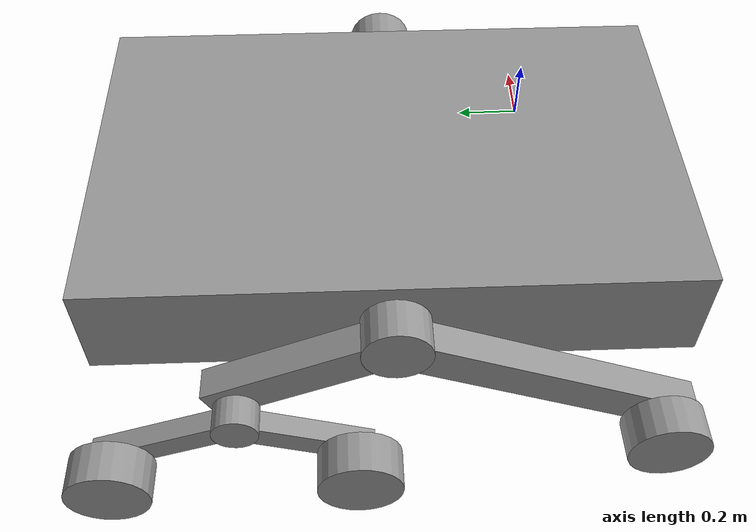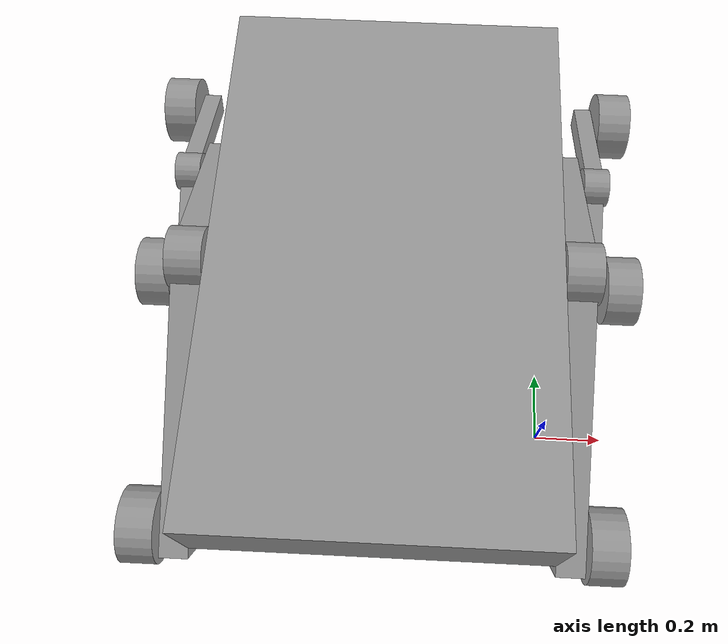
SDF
<sdf version="1.6">
 <model name="rover_2018">
  <link name="main_chassis">
   <pose>-0.495954 0.481744 0.172621 0 -0 0</pose>
   <inertial>
    <mass>10</mass>
    <inertia><ixx>0.01</ixx><ixy>0</ixy><ixz>0</ixz><iyy>0.01</iyy><iyz>0</iyz><izz>0.01</izz></inertia>
   </inertial>
   <visual name="visual">
    <geometry><box><size>1.09569 1.7415 0.312322</size></box></geometry>
    <material>
     <lighting>1</lighting>
     <script><uri>file://media/materials/scripts/gazebo.material</uri><name>Gazebo/Grey</name></script>
     <ambient>0.3 0.3 0.3 1</ambient>
     <diffuse>0.7 0.7 0.7 1</diffuse>
     <specular>0.01 0.01 0.01 1</specular>
     <emissive>0 0 0 1</emissive>
     <shader type="vertex"><normal_map>__default__</normal_map></shader>
    </material>
   </visual>
   <collision name="collision">
    <geometry><box><size>1.09569 1.7415 0.312322</size></box></geometry>
    <surface>
     <friction>
      <ode><mu>1</mu><mu2>1</mu2><fdir1>0 0 0</fdir1><slip1>0</slip1><slip2>0</slip2></ode>
      <torsional>
       <coefficient>1</coefficient>
       <patch_radius>0</patch_radius>
       <surface_radius>0</surface_radius>
       <use_patch_radius>1</use_patch_radius>
       <ode><slip>0</slip></ode>
      </torsional>
     </friction>
     <bounce><restitution_coefficient>0</restitution_coefficient><threshold>1e+06</threshold></bounce>
     <contact>
      <collide_without_contact>0</collide_without_contact>
      <collide_without_contact_bitmask>1</collide_without_contact_bitmask>
      <collide_bitmask>1</collide_bitmask>
      <ode>
       <soft_cfm>0</soft_cfm>
       <soft_erp>0.2</soft_erp>
       <kp>1e+13</kp>
       <kd>1</kd>
       <max_vel>0.01</max_vel>
       <min_depth>0</min_depth>
      </ode>
      <bullet>
       <split_impulse>1</split_impulse>
       <split_impulse_penetration_threshold>-0.01</split_impulse_penetration_threshold>
       <soft_cfm>0</soft_cfm>
       <soft_erp>0.2</soft_erp>
       <kp>1e+13</kp>
       <kd>1</kd>
      </bullet>
     </contact>
    </surface>
   </collision>
  </link>
  <link name="L_primary_rocker">
   <pose>0.120732 0.480291 0.210888 3.14159 -1.57 -3.14159</pose>
   <inertial>
    <mass>0.0046174</mass>
    <inertia><ixx>0.01</ixx><ixy>0</ixy><ixz>0</ixz><iyy>0.01</iyy><iyz>0</iyz><izz>0.01</izz></inertia>
   </inertial>
   <visual name="visual">
    <geometry><cylinder><radius>0.0992866</radius><length>0.116478</length></cylinder></geometry>
    <material>
     <lighting>1</lighting>
     <script><uri>file://media/materials/scripts/gazebo.material</uri><name>Gazebo/Grey</name></script>
     <ambient>0.3 0.3 0.3 1</ambient>
     <diffuse>0.7 0.7 0.7 1</diffuse>
     <specular>0.01 0.01 0.01 1</specular>
     <emissive>0 0 0 1</emissive>
     <shader type="vertex"><normal_map>__default__</normal_map></shader>
    </material>
   </visual>
  </link>
  <link name="L_primary_rocker_hinge">
   <pose>0.045335 0.475634 0.210685 3.14159 -1.57 -3.14159</pose>
   <inertial>
    <mass>0.00110726</mass>
    <inertia><ixx>0.01</ixx><ixy>0</ixy><ixz>0</ixz><iyy>0.01</iyy><iyz>0</iyz><izz>0.01</izz></inertia>
   </inertial>
   <visual name="visual">
    <geometry><cylinder><radius>0.0379471</radius><length>0.191181</length></cylinder></geometry>
    <material>
     <lighting>1</lighting>
     <script><uri>file://media/materials/scripts/gazebo.material</uri><name>Gazebo/Grey</name></script>
     <ambient>0.3 0.3 0.3 1</ambient>
     <diffuse>0.7 0.7 0.7 1</diffuse>
     <specular>0.01 0.01 0.01 1</specular>
     <emissive>0 0 0 1</emissive>
     <shader type="vertex"><normal_map>__default__</normal_map></shader>
    </material>
   </visual>
  </link>
  <link name="L_primary_wheel_arm_backwards">
   <pose>0.120732 0.773902 0.074463 -0.422885 0 0</pose>
   <inertial>
    <mass>0.00541225</mass>
    <inertia><ixx>0.01</ixx><ixy>0</ixy><ixz>0</ixz><iyy>0.01</iyy><iyz>0</iyz><izz>0.01</izz></inertia>
   </inertial>
   <visual name="visual">
    <geometry><box><size>0.093481 0.512407 0.11302</size></box></geometry>
    <material>
     <lighting>1</lighting>
     <script><uri>file://media/materials/scripts/gazebo.material</uri><name>Gazebo/Grey</name></script>
     <ambient>0.3 0.3 0.3 1</ambient>
     <diffuse>0.7 0.7 0.7 1</diffuse>
     <specular>0.01 0.01 0.01 1</specular>
     <emissive>0 0 0 1</emissive>
     <shader type="pixel"><normal_map>__default__</normal_map></shader>
    </material>
   </visual>
   <collision name="collision">
    <geometry><box><size>0.093481 0.512407 0.11302</size></box></geometry>
    <surface>
     <friction>
      <ode><mu>1</mu><mu2>1</mu2><fdir1>0 0 0</fdir1><slip1>0</slip1><slip2>0</slip2></ode>
      <torsional>
       <coefficient>1</coefficient>
       <patch_radius>0</patch_radius>
       <surface_radius>0</surface_radius>
       <use_patch_radius>1</use_patch_radius>
       <ode><slip>0</slip></ode>
      </torsional>
     </friction>
     <bounce><restitution_coefficient>0</restitution_coefficient><threshold>1e+06</threshold></bounce>
     <contact>
      <collide_without_contact>0</collide_without_contact>
      <collide_without_contact_bitmask>1</collide_without_contact_bitmask>
      <collide_bitmask>1</collide_bitmask>
      <ode>
       <soft_cfm>0</soft_cfm>
       <soft_erp>0.2</soft_erp>
       <kp>1e+13</kp>
       <kd>1</kd>
       <max_vel>0.01</max_vel>
       <min_depth>0</min_depth>
      </ode>
      <bullet>
       <split_impulse>1</split_impulse>
       <split_impulse_penetration_threshold>-0.01</split_impulse_penetration_threshold>
       <soft_cfm>0</soft_cfm>
       <soft_erp>0.2</soft_erp>
       <kp>1e+13</kp>
       <kd>1</kd>
      </bullet>
     </contact>
    </surface>
   </collision>
  </link>
  <link name="L_primary_wheel_arm_forwards">
   <pose>0.120732 0.030921 0.003788 0.410827 -0 0</pose>
   <inertial>
    <mass>0.00955178</mass>
    <inertia><ixx>0.01</ixx><ixy>0</ixy><ixz>0</ixz><iyy>0.01</iyy><iyz>0</iyz><izz>0.01</izz></inertia>
   </inertial>
   <visual name="visual">
    <geometry><box><size>0.093481 0.904318 0.11302</size></box></geometry>
    <material>
     <lighting>1</lighting>
     <script><uri>file://media/materials/scripts/gazebo.material</uri><name>Gazebo/Grey</name></script>
     <ambient>0.3 0.3 0.3 1</ambient>
     <diffuse>0.7 0.7 0.7 1</diffuse>
     <specular>0.01 0.01 0.01 1</specular>
     <emissive>0 0 0 1</emissive>
     <shader type="vertex"><normal_map>__default__</normal_map></shader>
    </material>
   </visual>
   <collision name="collision">
    <geometry><box><size>0.093481 0.904318 0.11302</size></box></geometry>
    <surface>
     <friction>
      <ode><mu>1</mu><mu2>1</mu2><fdir1>0 0 0</fdir1><slip1>0</slip1><slip2>0</slip2></ode>
      <torsional>
       <coefficient>1</coefficient>
       <patch_radius>0</patch_radius>
       <surface_radius>0</surface_radius>
       <use_patch_radius>1</use_patch_radius>
       <ode><slip>0</slip></ode>
      </torsional>
     </friction>
     <bounce><restitution_coefficient>0</restitution_coefficient><threshold>1e+06</threshold></bounce>
     <contact>
      <collide_without_contact>0</collide_without_contact>
      <collide_without_contact_bitmask>1</collide_without_contact_bitmask>
      <collide_bitmask>1</collide_bitmask>
      <ode>
       <soft_cfm>0</soft_cfm>
       <soft_erp>0.2</soft_erp>
       <kp>1e+13</kp>
       <kd>1</kd>
       <max_vel>0.01</max_vel>
       <min_depth>0</min_depth>
      </ode>
      <bullet>
       <split_impulse>1</split_impulse>
       <split_impulse_penetration_threshold>-0.01</split_impulse_penetration_threshold>
       <soft_cfm>0</soft_cfm>
       <soft_erp>0.2</soft_erp>
       <kp>1e+13</kp>
       <kd>1</kd>
      </bullet>
     </contact>
    </surface>
   </collision>
  </link>
  <link name="L_secondary_rocker">
   <pose>0.227534 0.930061 -0.012476 3.14159 -1.57 -3.14159</pose>
   <inertial>
    <mass>0.00158531</mass>
    <inertia><ixx>0.01</ixx><ixy>0</ixy><ixz>0</ixz><iyy>0.01</iyy><iyz>0</iyz><izz>0.01</izz></inertia>
   </inertial>
   <visual name="visual">
    <geometry><cylinder><radius>0.0665773</radius><length>0.088915</length></cylinder></geometry>
    <material>
     <lighting>1</lighting>
     <script><uri>file://media/materials/scripts/gazebo.material</uri><name>Gazebo/Grey</name></script>
     <ambient>0.3 0.3 0.3 1</ambient>
     <diffuse>0.7 0.7 0.7 1</diffuse>
     <specular>0.01 0.01 0.01 1</specular>
     <emissive>0 0 0 1</emissive>
     <shader type="vertex"><normal_map>__default__</normal_map></shader>
    </material>
   </visual>
  </link>
  <link name="L_secondary_rocker_hinge">
   <pose>0.173471 0.937461 -0.010085 3.14159 -1.57 -3.14159</pose>
   <inertial>
    <mass>0.00016166</mass>
    <inertia><ixx>0.01</ixx><ixy>0</ixy><ixz>0</ixz><iyy>0.01</iyy><iyz>0</iyz><izz>0.01</izz></inertia>
   </inertial>
   <visual name="visual">
    <geometry><cylinder><radius>0.0152481</radius><length>0.138038</length></cylinder></geometry>
    <material>
     <lighting>1</lighting>
     <script><uri>file://media/materials/scripts/gazebo.material</uri><name>Gazebo/Grey</name></script>
     <ambient>0.3 0.3 0.3 1</ambient>
     <diffuse>0.7 0.7 0.7 1</diffuse>
     <specular>0.01 0.01 0.01 1</specular>
     <emissive>0 0 0 1</emissive>
     <shader type="vertex"><normal_map>__default__</normal_map></shader>
    </material>
   </visual>
  </link>
  <link name="L_secondary_wheel_arm_backwards">
   <pose>0.227534 1.14505 -0.096467 -0.359364 0 0</pose>
   <inertial>
    <mass>0.0019482</mass>
    <inertia><ixx>0.01</ixx><ixy>0</ixy><ixz>0</ixz><iyy>0.01</iyy><iyz>0</iyz><izz>0.01</izz></inertia>
   </inertial>
   <visual name="visual">
    <geometry><box><size>0.062968 0.419703 0.073703</size></box></geometry>
    <material>
     <lighting>1</lighting>
     <script><uri>file://media/materials/scripts/gazebo.material</uri><name>Gazebo/Grey</name></script>
     <ambient>0.3 0.3 0.3 1</ambient>
     <diffuse>0.7 0.7 0.7 1</diffuse>
     <specular>0.01 0.01 0.01 1</specular>
     <emissive>0 0 0 1</emissive>
     <shader type="pixel"/>
    </material>
   </visual>
   <collision name="collision">
    <geometry><box><size>0.062968 0.419703 0.073703</size></box></geometry>
    <surface>
     <friction>
      <ode><mu>1</mu><mu2>1</mu2><fdir1>0 0 0</fdir1><slip1>0</slip1><slip2>0</slip2></ode>
      <torsional>
       <coefficient>1</coefficient>
       <patch_radius>0</patch_radius>
       <surface_radius>0</surface_radius>
       <use_patch_radius>1</use_patch_radius>
       <ode><slip>0</slip></ode>
      </torsional>
     </friction>
     <bounce><restitution_coefficient>0</restitution_coefficient><threshold>1e+06</threshold></bounce>
     <contact>
      <collide_without_contact>0</collide_without_contact>
      <collide_without_contact_bitmask>1</collide_without_contact_bitmask>
      <collide_bitmask>1</collide_bitmask>
      <ode>
       <soft_cfm>0</soft_cfm>
       <soft_erp>0.2</soft_erp>
       <kp>1e+13</kp>
       <kd>1</kd>
       <max_vel>0.01</max_vel>
       <min_depth>0</min_depth>
      </ode>
      <bullet>
       <split_impulse>1</split_impulse>
       <split_impulse_penetration_threshold>-0.01</split_impulse_penetration_threshold>
       <soft_cfm>0</soft_cfm>
       <soft_erp>0.2</soft_erp>
       <kp>1e+13</kp>
       <kd>1</kd>
      </bullet>
     </contact>
    </surface>
   </collision>
  </link>
  <link name="L_secondary_wheel_arm_forward">
   <pose>0.227534 0.747337 -0.096816 0.366679 -0 0</pose>
   <inertial>
    <mass>0.00190054</mass>
    <inertia><ixx>0.01</ixx><ixy>0</ixy><ixz>0</ixz><iyy>0.01</iyy><iyz>0</iyz><izz>0.01</izz></inertia>
   </inertial>
   <visual name="visual">
    <geometry><box><size>0.062968 0.40946 0.073703</size></box></geometry>
    <material>
     <lighting>1</lighting>
     <script><uri>file://media/materials/scripts/gazebo.material</uri><name>Gazebo/Grey</name></script>
     <ambient>0.3 0.3 0.3 1</ambient>
     <diffuse>0.7 0.7 0.7 1</diffuse>
     <specular>0.01 0.01 0.01 1</specular>
     <emissive>0 0 0 1</emissive>
     <shader type="pixel"><normal_map>__default__</normal_map></shader>
    </material>
   </visual>
   <collision name="collision">
    <geometry><box><size>0.062968 0.40946 0.073703</size></box></geometry>
    <surface>
     <friction>
      <ode><mu>1</mu><mu2>1</mu2><fdir1>0 0 0</fdir1><slip1>0</slip1><slip2>0</slip2></ode>
      <torsional>
       <coefficient>1</coefficient>
       <patch_radius>0</patch_radius>
       <surface_radius>0</surface_radius>
       <use_patch_radius>1</use_patch_radius>
       <ode><slip>0</slip></ode>
      </torsional>
     </friction>
     <bounce><restitution_coefficient>0</restitution_coefficient><threshold>1e+06</threshold></bounce>
     <contact>
      <collide_without_contact>0</collide_without_contact>
      <collide_without_contact_bitmask>1</collide_without_contact_bitmask>
      <collide_bitmask>1</collide_bitmask>
      <ode>
       <soft_cfm>0</soft_cfm>
       <soft_erp>0.2</soft_erp>
       <kp>1e+13</kp>
       <kd>1</kd>
       <max_vel>0.01</max_vel>
       <min_depth>0</min_depth>
      </ode>
      <bullet>
       <split_impulse>1</split_impulse>
       <split_impulse_penetration_threshold>-0.01</split_impulse_penetration_threshold>
       <soft_cfm>0</soft_cfm>
       <soft_erp>0.2</soft_erp>
       <kp>1e+13</kp>
       <kd>1</kd>
      </bullet>
     </contact>
    </surface>
   </collision>
  </link>
  <link name="L_wheel_1">
   <pose>0.231981 -0.300898 -0.152796 3.14159 -1.57 -3.14159</pose>
   <inertial>
    <mass>1</mass>
    <inertia><ixx>0.01</ixx><ixy>0</ixy><ixz>0</ixz><iyy>0.01</iyy><iyz>0</iyz><izz>0.01</izz></inertia>
   </inertial>
   <visual name="visual">
    <geometry><cylinder><radius>0.122078</radius><length>0.116478</length></cylinder></geometry>
    <material>
     <lighting>1</lighting>
     <script><uri>file://media/materials/scripts/gazebo.material</uri><name>Gazebo/Grey</name></script>
     <ambient>0.3 0.3 0.3 1</ambient>
     <diffuse>0.7 0.7 0.7 1</diffuse>
     <specular>0.01 0.01 0.01 1</specular>
     <emissive>0 0 0 1</emissive>
     <shader type="vertex"><normal_map>__default__</normal_map></shader>
    </material>
   </visual>
   <collision name="collision">
    <geometry><cylinder><radius>0.122078</radius><length>0.116478</length></cylinder></geometry>
    <surface>
     <friction>
      <ode><mu>1</mu><mu2>1</mu2><fdir1>0 0 0</fdir1><slip1>0</slip1><slip2>0</slip2></ode>
      <torsional>
       <coefficient>1</coefficient>
       <patch_radius>0</patch_radius>
       <surface_radius>0</surface_radius>
       <use_patch_radius>1</use_patch_radius>
       <ode><slip>0</slip></ode>
      </torsional>
     </friction>
     <bounce><restitution_coefficient>0</restitution_coefficient><threshold>1e+06</threshold></bounce>
     <contact>
      <collide_without_contact>0</collide_without_contact>
      <collide_without_contact_bitmask>1</collide_without_contact_bitmask>
      <collide_bitmask>1</collide_bitmask>
      <ode>
       <soft_cfm>0</soft_cfm>
       <soft_erp>0.2</soft_erp>
       <kp>1e+13</kp>
       <kd>1</kd>
       <max_vel>0.01</max_vel>
       <min_depth>0</min_depth>
      </ode>
      <bullet>
       <split_impulse>1</split_impulse>
       <split_impulse_penetration_threshold>-0.01</split_impulse_penetration_threshold>
       <soft_cfm>0</soft_cfm>
       <soft_erp>0.2</soft_erp>
       <kp>1e+13</kp>
       <kd>1</kd>
      </bullet>
     </contact>
    </surface>
   </collision>
  </link>
  <link name="L_wheel_2">
   <pose>0.327595 0.588491 -0.15151 3.14159 -1.57 -3.14159</pose>
   <inertial>
    <mass>1</mass>
    <inertia><ixx>0.01</ixx><ixy>0</ixy><ixz>0</ixz><iyy>0.01</iyy><iyz>0</iyz><izz>0.01</izz></inertia>
   </inertial>
   <visual name="visual">
    <geometry><cylinder><radius>0.122078</radius><length>0.116478</length></cylinder></geometry>
    <material>
     <lighting>1</lighting>
     <script><uri>file://media/materials/scripts/gazebo.material</uri><name>Gazebo/Grey</name></script>
     <ambient>0.3 0.3 0.3 1</ambient>
     <diffuse>0.7 0.7 0.7 1</diffuse>
     <specular>0.01 0.01 0.01 1</specular>
     <emissive>0 0 0 1</emissive>
     <shader type="vertex"><normal_map>__default__</normal_map></shader>
    </material>
   </visual>
   <collision name="collision">
    <geometry><cylinder><radius>0.122078</radius><length>0.116478</length></cylinder></geometry>
    <surface>
     <friction>
      <ode><mu>1</mu><mu2>1</mu2><fdir1>0 0 0</fdir1><slip1>0</slip1><slip2>0</slip2></ode>
      <torsional>
       <coefficient>1</coefficient>
       <patch_radius>0</patch_radius>
       <surface_radius>0</surface_radius>
       <use_patch_radius>1</use_patch_radius>
       <ode><slip>0</slip></ode>
      </torsional>
     </friction>
     <bounce><restitution_coefficient>0</restitution_coefficient><threshold>1e+06</threshold></bounce>
     <contact>
      <collide_without_contact>0</collide_without_contact>
      <collide_without_contact_bitmask>1</collide_without_contact_bitmask>
      <collide_bitmask>1</collide_bitmask>
      <ode>
       <soft_cfm>0</soft_cfm>
       <soft_erp>0.2</soft_erp>
       <kp>1e+13</kp>
       <kd>1</kd>
       <max_vel>0.01</max_vel>
       <min_depth>0</min_depth>
      </ode>
      <bullet>
       <split_impulse>1</split_impulse>
       <split_impulse_penetration_threshold>-0.01</split_impulse_penetration_threshold>
       <soft_cfm>0</soft_cfm>
       <soft_erp>0.2</soft_erp>
       <kp>1e+13</kp>
       <kd>1</kd>
      </bullet>
     </contact>
    </surface>
   </collision>
  </link>
  <link name="L_wheel_3">
   <pose>0.327595 1.29129 -0.152082 3.14159 -1.57 -3.14159</pose>
   <inertial>
    <mass>1</mass>
    <inertia><ixx>0.01</ixx><ixy>0</ixy><ixz>0</ixz><iyy>0.01</iyy><iyz>0</iyz><izz>0.01</izz></inertia>
   </inertial>
   <visual name="visual">
    <geometry><cylinder><radius>0.122078</radius><length>0.116478</length></cylinder></geometry>
    <material>
     <lighting>1</lighting>
     <script><uri>file://media/materials/scripts/gazebo.material</uri><name>Gazebo/Grey</name></script>
     <ambient>0.3 0.3 0.3 1</ambient>
     <diffuse>0.7 0.7 0.7 1</diffuse>
     <specular>0.01 0.01 0.01 1</specular>
     <emissive>0 0 0 1</emissive>
     <shader type="vertex"><normal_map>__default__</normal_map></shader>
    </material>
   </visual>
   <collision name="collision">
    <geometry><cylinder><radius>0.122078</radius><length>0.116478</length></cylinder></geometry>
    <surface>
     <friction>
      <ode><mu>1</mu><mu2>1</mu2><fdir1>0 0 0</fdir1><slip1>0</slip1><slip2>0</slip2></ode>
      <torsional>
       <coefficient>1</coefficient>
       <patch_radius>0</patch_radius>
       <surface_radius>0</surface_radius>
       <use_patch_radius>1</use_patch_radius>
       <ode><slip>0</slip></ode>
      </torsional>
     </friction>
     <bounce><restitution_coefficient>0</restitution_coefficient><threshold>1e+06</threshold></bounce>
     <contact>
      <collide_without_contact>0</collide_without_contact>
      <collide_without_contact_bitmask>1</collide_without_contact_bitmask>
      <collide_bitmask>1</collide_bitmask>
      <ode>
       <soft_cfm>0</soft_cfm>
       <soft_erp>0.2</soft_erp>
       <kp>1e+13</kp>
       <kd>1</kd>
       <max_vel>0.01</max_vel>
       <min_depth>0</min_depth>
      </ode>
      <bullet>
       <split_impulse>1</split_impulse>
       <split_impulse_penetration_threshold>-0.01</split_impulse_penetration_threshold>
       <soft_cfm>0</soft_cfm>
       <soft_erp>0.2</soft_erp>
       <kp>1e+13</kp>
       <kd>1</kd>
      </bullet>
     </contact>
    </surface>
   </collision>
  </link>
  <link name="L_wheel_hinge_1">
   <pose>0.157404 -0.319861 -0.15619 3.14159 -1.57 -3.14159</pose>
   <inertial>
    <mass>0.00016166</mass>
    <inertia><ixx>0.01</ixx><ixy>0</ixy><ixz>0</ixz><iyy>0.01</iyy><iyz>0</iyz><izz>0.01</izz></inertia>
   </inertial>
   <visual name="visual">
    <geometry><cylinder><radius>0.0170673</radius><length>0.138038</length></cylinder></geometry>
    <material>
     <lighting>1</lighting>
     <script><uri>file://media/materials/scripts/gazebo.material</uri><name>Gazebo/Grey</name></script>
     <ambient>0.3 0.3 0.3 1</ambient>
     <diffuse>0.7 0.7 0.7 1</diffuse>
     <specular>0.01 0.01 0.01 1</specular>
     <emissive>0 0 0 1</emissive>
     <shader type="vertex"><normal_map>__default__</normal_map></shader>
    </material>
   </visual>
  </link>
  <link name="L_wheel_hinge_2">
   <pose>0.266627 0.591116 -0.159992 3.14159 -1.57 -3.14159</pose>
   <inertial>
    <mass>0.00016166</mass>
    <inertia><ixx>0.01</ixx><ixy>0</ixy><ixz>0</ixz><iyy>0.01</iyy><iyz>0</iyz><izz>0.01</izz></inertia>
   </inertial>
   <visual name="visual">
    <geometry><cylinder><radius>0.0170673</radius><length>0.138038</length></cylinder></geometry>
    <material>
     <lighting>1</lighting>
     <script><uri>file://media/materials/scripts/gazebo.material</uri><name>Gazebo/Grey</name></script>
     <ambient>0.3 0.3 0.3 1</ambient>
     <diffuse>0.7 0.7 0.7 1</diffuse>
     <specular>0.01 0.01 0.01 1</specular>
     <emissive>0 0 0 1</emissive>
     <shader type="vertex"><normal_map>__default__</normal_map></shader>
    </material>
   </visual>
  </link>
  <link name="L_wheel_hinge_3">
   <pose>0.283732 1.29534 -0.157563 3.14159 -1.57 -3.14159</pose>
   <inertial>
    <mass>0.0001415</mass>
    <inertia><ixx>0.01</ixx><ixy>0</ixy><ixz>0</ixz><iyy>0.01</iyy><iyz>0</iyz><izz>0.01</izz></inertia>
   </inertial>
   <visual name="visual">
    <geometry><cylinder><radius>0.0170673</radius><length>0.120823</length></cylinder></geometry>
    <material>
     <lighting>1</lighting>
     <script><uri>file://media/materials/scripts/gazebo.material</uri><name>Gazebo/Grey</name></script>
     <ambient>0.3 0.3 0.3 1</ambient>
     <diffuse>0.7 0.7 0.7 1</diffuse>
     <specular>0.01 0.01 0.01 1</specular>
     <emissive>0 0 0 1</emissive>
     <shader type="vertex"><normal_map>__default__</normal_map></shader>
    </material>
   </visual>
  </link>
  <link name="R_primary_rocker">
   <pose>-1.11994 0.480291 0.2099 3.14159 -1.57 -3.14159</pose>
   <inertial>
    <mass>0.0046174</mass>
    <inertia><ixx>0.01</ixx><ixy>0</ixy><ixz>0</ixz><iyy>0.01</iyy><iyz>0</iyz><izz>0.01</izz></inertia>
   </inertial>
   <visual name="visual">
    <geometry><cylinder><radius>0.0992866</radius><length>0.116478</length></cylinder></geometry>
    <material>
     <lighting>1</lighting>
     <script><uri>file://media/materials/scripts/gazebo.material</uri><name>Gazebo/Grey</name></script>
     <ambient>0.3 0.3 0.3 1</ambient>
     <diffuse>0.7 0.7 0.7 1</diffuse>
     <specular>0.01 0.01 0.01 1</specular>
     <emissive>0 0 0 1</emissive>
     <shader type="vertex"><normal_map>__default__</normal_map></shader>
    </material>
   </visual>
  </link>
  <link name="R_primary_rocker_hinge">
   <pose>-1.03751 0.475634 0.209823 3.14159 -1.57 -3.14159</pose>
   <inertial>
    <mass>0.00110726</mass>
    <inertia><ixx>0.01</ixx><ixy>0</ixy><ixz>0</ixz><iyy>0.01</iyy><iyz>0</iyz><izz>0.01</izz></inertia>
   </inertial>
   <visual name="visual">
    <geometry><cylinder><radius>0.0379471</radius><length>0.191181</length></cylinder></geometry>
    <material>
     <lighting>1</lighting>
     <script><uri>file://media/materials/scripts/gazebo.material</uri><name>Gazebo/Grey</name></script>
     <ambient>0.3 0.3 0.3 1</ambient>
     <diffuse>0.7 0.7 0.7 1</diffuse>
     <specular>0.01 0.01 0.01 1</specular>
     <emissive>0 0 0 1</emissive>
     <shader type="vertex"><normal_map>__default__</normal_map></shader>
    </material>
   </visual>
  </link>
  <link name="R_primary_wheel_arm_backwards">
   <pose>-1.11994 0.773902 0.074463 -0.422885 0 0</pose>
   <inertial>
    <mass>0.00541225</mass>
    <inertia><ixx>0.01</ixx><ixy>0</ixy><ixz>0</ixz><iyy>0.01</iyy><iyz>0</iyz><izz>0.01</izz></inertia>
   </inertial>
   <visual name="visual">
    <geometry><box><size>0.093481 0.512407 0.11302</size></box></geometry>
    <material>
     <lighting>1</lighting>
     <script><uri>file://media/materials/scripts/gazebo.material</uri><name>Gazebo/Grey</name></script>
     <ambient>0.3 0.3 0.3 1</ambient>
     <diffuse>0.7 0.7 0.7 1</diffuse>
     <specular>0.01 0.01 0.01 1</specular>
     <emissive>0 0 0 1</emissive>
     <shader type="pixel"/>
    </material>
   </visual>
   <collision name="collision">
    <geometry><box><size>0.093481 0.512407 0.11302</size></box></geometry>
    <surface>
     <friction>
      <ode><mu>1</mu><mu2>1</mu2><fdir1>0 0 0</fdir1><slip1>0</slip1><slip2>0</slip2></ode>
      <torsional>
       <coefficient>1</coefficient>
       <patch_radius>0</patch_radius>
       <surface_radius>0</surface_radius>
       <use_patch_radius>1</use_patch_radius>
       <ode><slip>0</slip></ode>
      </torsional>
     </friction>
     <bounce><restitution_coefficient>0</restitution_coefficient><threshold>1e+06</threshold></bounce>
     <contact>
      <collide_without_contact>0</collide_without_contact>
      <collide_without_contact_bitmask>1</collide_without_contact_bitmask>
      <collide_bitmask>1</collide_bitmask>
      <ode>
       <soft_cfm>0</soft_cfm>
       <soft_erp>0.2</soft_erp>
       <kp>1e+13</kp>
       <kd>1</kd>
       <max_vel>0.01</max_vel>
       <min_depth>0</min_depth>
      </ode>
      <bullet>
       <split_impulse>1</split_impulse>
       <split_impulse_penetration_threshold>-0.01</split_impulse_penetration_threshold>
       <soft_cfm>0</soft_cfm>
       <soft_erp>0.2</soft_erp>
       <kp>1e+13</kp>
       <kd>1</kd>
      </bullet>
     </contact>
    </surface>
   </collision>
  </link>
  <link name="R_primary_wheel_arm_forwards">
   <pose>-1.11994 0.030921 0.003788 0.410827 -0 0</pose>
   <inertial>
    <mass>0.00955178</mass>
    <inertia><ixx>0.01</ixx><ixy>0</ixy><ixz>0</ixz><iyy>0.01</iyy><iyz>0</iyz><izz>0.01</izz></inertia>
   </inertial>
   <visual name="visual">
    <geometry><box><size>0.093481 0.904318 0.11302</size></box></geometry>
    <material>
     <lighting>1</lighting>
     <script><uri>file://media/materials/scripts/gazebo.material</uri><name>Gazebo/Grey</name></script>
     <ambient>0.3 0.3 0.3 1</ambient>
     <diffuse>0.7 0.7 0.7 1</diffuse>
     <specular>0.01 0.01 0.01 1</specular>
     <emissive>0 0 0 1</emissive>
     <shader type="vertex"><normal_map>__default__</normal_map></shader>
    </material>
   </visual>
   <collision name="collision">
    <geometry><box><size>0.093481 0.904318 0.11302</size></box></geometry>
    <surface>
     <friction>
      <ode><mu>1</mu><mu2>1</mu2><fdir1>0 0 0</fdir1><slip1>0</slip1><slip2>0</slip2></ode>
      <torsional>
       <coefficient>1</coefficient>
       <patch_radius>0</patch_radius>
       <surface_radius>0</surface_radius>
       <use_patch_radius>1</use_patch_radius>
       <ode><slip>0</slip></ode>
      </torsional>
     </friction>
     <bounce><restitution_coefficient>0</restitution_coefficient><threshold>1e+06</threshold></bounce>
     <contact>
      <collide_without_contact>0</collide_without_contact>
      <collide_without_contact_bitmask>1</collide_without_contact_bitmask>
      <collide_bitmask>1</collide_bitmask>
      <ode>
       <soft_cfm>0</soft_cfm>
       <soft_erp>0.2</soft_erp>
       <kp>1e+13</kp>
       <kd>1</kd>
       <max_vel>0.01</max_vel>
       <min_depth>0</min_depth>
      </ode>
      <bullet>
       <split_impulse>1</split_impulse>
       <split_impulse_penetration_threshold>-0.01</split_impulse_penetration_threshold>
       <soft_cfm>0</soft_cfm>
       <soft_erp>0.2</soft_erp>
       <kp>1e+13</kp>
       <kd>1</kd>
      </bullet>
     </contact>
    </surface>
   </collision>
  </link>
  <link name="R_secondary_rocker">
   <pose>-1.22452 0.930061 -0.013632 3.14159 -1.57 -3.14159</pose>
   <inertial>
    <mass>0.00158531</mass>
    <inertia><ixx>0.01</ixx><ixy>0</ixy><ixz>0</ixz><iyy>0.01</iyy><iyz>0</iyz><izz>0.01</izz></inertia>
   </inertial>
   <visual name="visual">
    <geometry><cylinder><radius>0.0665773</radius><length>0.088915</length></cylinder></geometry>
    <material>
     <lighting>1</lighting>
     <script><uri>file://media/materials/scripts/gazebo.material</uri><name>Gazebo/Grey</name></script>
     <ambient>0.3 0.3 0.3 1</ambient>
     <diffuse>0.7 0.7 0.7 1</diffuse>
     <specular>0.01 0.01 0.01 1</specular>
     <emissive>0 0 0 1</emissive>
     <shader type="vertex"><normal_map>__default__</normal_map></shader>
    </material>
   </visual>
  </link>
  <link name="R_secondary_rocker_hinge">
   <pose>-1.16913 0.937461 -0.011154 3.14159 -1.57 -3.14159</pose>
   <inertial>
    <mass>0.00016166</mass>
    <inertia><ixx>0.01</ixx><ixy>0</ixy><ixz>0</ixz><iyy>0.01</iyy><iyz>0</iyz><izz>0.01</izz></inertia>
   </inertial>
   <visual name="visual">
    <geometry><cylinder><radius>0.0170673</radius><length>0.138038</length></cylinder></geometry>
    <material>
     <lighting>1</lighting>
     <script><uri>file://media/materials/scripts/gazebo.material</uri><name>Gazebo/Grey</name></script>
     <ambient>0.3 0.3 0.3 1</ambient>
     <diffuse>0.7 0.7 0.7 1</diffuse>
     <specular>0.01 0.01 0.01 1</specular>
     <emissive>0 0 0 1</emissive>
     <shader type="vertex"><normal_map>__default__</normal_map></shader>
    </material>
   </visual>
  </link>
  <link name="R_secondary_wheel_arm_backwards">
   <pose>-1.22452 1.14505 -0.096467 -0.359364 0 0</pose>
   <inertial>
    <mass>0.0019482</mass>
    <inertia><ixx>0.01</ixx><ixy>0</ixy><ixz>0</ixz><iyy>0.01</iyy><iyz>0</iyz><izz>0.01</izz></inertia>
   </inertial>
   <visual name="visual">
    <geometry><box><size>0.062968 0.419703 0.073703</size></box></geometry>
    <material>
     <lighting>1</lighting>
     <script><uri>file://media/materials/scripts/gazebo.material</uri><name>Gazebo/Grey</name></script>
     <ambient>0.3 0.3 0.3 1</ambient>
     <diffuse>0.7 0.7 0.7 1</diffuse>
     <specular>0.01 0.01 0.01 1</specular>
     <emissive>0 0 0 1</emissive>
     <shader type="pixel"><normal_map>__default__</normal_map></shader>
    </material>
   </visual>
   <collision name="collision">
    <geometry><box><size>0.062968 0.419703 0.073703</size></box></geometry>
    <surface>
     <friction>
      <ode><mu>1</mu><mu2>1</mu2><fdir1>0 0 0</fdir1><slip1>0</slip1><slip2>0</slip2></ode>
      <torsional>
       <coefficient>1</coefficient>
       <patch_radius>0</patch_radius>
       <surface_radius>0</surface_radius>
       <use_patch_radius>1</use_patch_radius>
       <ode><slip>0</slip></ode>
      </torsional>
     </friction>
     <bounce><restitution_coefficient>0</restitution_coefficient><threshold>1e+06</threshold></bounce>
     <contact>
      <collide_without_contact>0</collide_without_contact>
      <collide_without_contact_bitmask>1</collide_without_contact_bitmask>
      <collide_bitmask>1</collide_bitmask>
      <ode>
       <soft_cfm>0</soft_cfm>
       <soft_erp>0.2</soft_erp>
       <kp>1e+13</kp>
       <kd>1</kd>
       <max_vel>0.01</max_vel>
       <min_depth>0</min_depth>
      </ode>
      <bullet>
       <split_impulse>1</split_impulse>
       <split_impulse_penetration_threshold>-0.01</split_impulse_penetration_threshold>
       <soft_cfm>0</soft_cfm>
       <soft_erp>0.2</soft_erp>
       <kp>1e+13</kp>
       <kd>1</kd>
      </bullet>
     </contact>
    </surface>
   </collision>
  </link>
  <link name="R_secondary_wheel_arm_forward">
   <pose>-1.22452 0.747337 -0.096816 0.366679 -0 0</pose>
   <inertial>
    <mass>0.00190054</mass>
    <inertia><ixx>0.01</ixx><ixy>0</ixy><ixz>0</ixz><iyy>0.01</iyy><iyz>0</iyz><izz>0.01</izz></inertia>
   </inertial>
   <visual name="visual">
    <geometry><box><size>0.062968 0.40946 0.073703</size></box></geometry>
    <material>
     <lighting>1</lighting>
     <script><uri>file://media/materials/scripts/gazebo.material</uri><name>Gazebo/Grey</name></script>
     <ambient>0.3 0.3 0.3 1</ambient>
     <diffuse>0.7 0.7 0.7 1</diffuse>
     <specular>0.01 0.01 0.01 1</specular>
     <emissive>0 0 0 1</emissive>
     <shader type="pixel"><normal_map>__default__</normal_map></shader>
    </material>
   </visual>
   <collision name="collision">
    <geometry><box><size>0.062968 0.40946 0.073703</size></box></geometry>
    <surface>
     <friction>
      <ode><mu>1</mu><mu2>1</mu2><fdir1>0 0 0</fdir1><slip1>0</slip1><slip2>0</slip2></ode>
      <torsional>
       <coefficient>1</coefficient>
       <patch_radius>0</patch_radius>
       <surface_radius>0</surface_radius>
       <use_patch_radius>1</use_patch_radius>
       <ode><slip>0</slip></ode>
      </torsional>
     </friction>
     <bounce><restitution_coefficient>0</restitution_coefficient><threshold>1e+06</threshold></bounce>
     <contact>
      <collide_without_contact>0</collide_without_contact>
      <collide_without_contact_bitmask>1</collide_without_contact_bitmask>
      <collide_bitmask>1</collide_bitmask>
      <ode>
       <soft_cfm>0</soft_cfm>
       <soft_erp>0.2</soft_erp>
       <kp>1e+13</kp>
       <kd>1</kd>
       <max_vel>0.01</max_vel>
       <min_depth>0</min_depth>
      </ode>
      <bullet>
       <split_impulse>1</split_impulse>
       <split_impulse_penetration_threshold>-0.01</split_impulse_penetration_threshold>
       <soft_cfm>0</soft_cfm>
       <soft_erp>0.2</soft_erp>
       <kp>1e+13</kp>
       <kd>1</kd>
      </bullet>
     </contact>
    </surface>
   </collision>
  </link>
  <link name="R_wheel_1">
   <pose>-1.23345 -0.300898 -0.153963 3.14159 -1.57 -3.14159</pose>
   <inertial>
    <mass>1</mass>
    <inertia><ixx>0.01</ixx><ixy>0</ixy><ixz>0</ixz><iyy>0.01</iyy><iyz>0</iyz><izz>0.01</izz></inertia>
   </inertial>
   <visual name="visual">
    <geometry><cylinder><radius>0.122078</radius><length>0.116478</length></cylinder></geometry>
    <material>
     <lighting>1</lighting>
     <script><uri>file://media/materials/scripts/gazebo.material</uri><name>Gazebo/Grey</name></script>
     <ambient>0.3 0.3 0.3 1</ambient>
     <diffuse>0.7 0.7 0.7 1</diffuse>
     <specular>0.01 0.01 0.01 1</specular>
     <emissive>0 0 0 1</emissive>
     <shader type="vertex"><normal_map>__default__</normal_map></shader>
    </material>
   </visual>
   <collision name="collision">
    <geometry><cylinder><radius>0.122078</radius><length>0.116478</length></cylinder></geometry>
    <surface>
     <friction>
      <ode><mu>1</mu><mu2>1</mu2><fdir1>0 0 0</fdir1><slip1>0</slip1><slip2>0</slip2></ode>
      <torsional>
       <coefficient>1</coefficient>
       <patch_radius>0</patch_radius>
       <surface_radius>0</surface_radius>
       <use_patch_radius>1</use_patch_radius>
       <ode><slip>0</slip></ode>
      </torsional>
     </friction>
     <bounce><restitution_coefficient>0</restitution_coefficient><threshold>1e+06</threshold></bounce>
     <contact>
      <collide_without_contact>0</collide_without_contact>
      <collide_without_contact_bitmask>1</collide_without_contact_bitmask>
      <collide_bitmask>1</collide_bitmask>
      <ode>
       <soft_cfm>0</soft_cfm>
       <soft_erp>0.2</soft_erp>
       <kp>1e+13</kp>
       <kd>1</kd>
       <max_vel>0.01</max_vel>
       <min_depth>0</min_depth>
      </ode>
      <bullet>
       <split_impulse>1</split_impulse>
       <split_impulse_penetration_threshold>-0.01</split_impulse_penetration_threshold>
       <soft_cfm>0</soft_cfm>
       <soft_erp>0.2</soft_erp>
       <kp>1e+13</kp>
       <kd>1</kd>
      </bullet>
     </contact>
    </surface>
   </collision>
  </link>
  <link name="R_wheel_2">
   <pose>-1.31728 0.588299 -0.152822 3.14159 -1.57 -3.14159</pose>
   <inertial>
    <mass>1</mass>
    <inertia><ixx>0.01</ixx><ixy>0</ixy><ixz>0</ixz><iyy>0.01</iyy><iyz>0</iyz><izz>0.01</izz></inertia>
   </inertial>
   <visual name="visual">
    <geometry><cylinder><radius>0.122078</radius><length>0.116478</length></cylinder></geometry>
    <material>
     <lighting>1</lighting>
     <script><uri>file://media/materials/scripts/gazebo.material</uri><name>Gazebo/Grey</name></script>
     <ambient>0.3 0.3 0.3 1</ambient>
     <diffuse>0.7 0.7 0.7 1</diffuse>
     <specular>0.01 0.01 0.01 1</specular>
     <emissive>0 0 0 1</emissive>
     <shader type="vertex"><normal_map>__default__</normal_map></shader>
    </material>
   </visual>
   <collision name="collision">
    <geometry><cylinder><radius>0.122078</radius><length>0.116478</length></cylinder></geometry>
    <surface>
     <friction>
      <ode><mu>1</mu><mu2>1</mu2><fdir1>0 0 0</fdir1><slip1>0</slip1><slip2>0</slip2></ode>
      <torsional>
       <coefficient>1</coefficient>
       <patch_radius>0</patch_radius>
       <surface_radius>0</surface_radius>
       <use_patch_radius>1</use_patch_radius>
       <ode><slip>0</slip></ode>
      </torsional>
     </friction>
     <bounce><restitution_coefficient>0</restitution_coefficient><threshold>1e+06</threshold></bounce>
     <contact>
      <collide_without_contact>0</collide_without_contact>
      <collide_without_contact_bitmask>1</collide_without_contact_bitmask>
      <collide_bitmask>1</collide_bitmask>
      <ode>
       <soft_cfm>0</soft_cfm>
       <soft_erp>0.2</soft_erp>
       <kp>1e+13</kp>
       <kd>1</kd>
       <max_vel>0.01</max_vel>
       <min_depth>0</min_depth>
      </ode>
      <bullet>
       <split_impulse>1</split_impulse>
       <split_impulse_penetration_threshold>-0.01</split_impulse_penetration_threshold>
       <soft_cfm>0</soft_cfm>
       <soft_erp>0.2</soft_erp>
       <kp>1e+13</kp>
       <kd>1</kd>
      </bullet>
     </contact>
    </surface>
   </collision>
  </link>
  <link name="R_wheel_3">
   <pose>-1.31997 1.29129 -0.1534 3.14159 -1.57 -3.14159</pose>
   <inertial>
    <mass>1</mass>
    <inertia><ixx>0.01</ixx><ixy>0</ixy><ixz>0</ixz><iyy>0.01</iyy><iyz>0</iyz><izz>0.01</izz></inertia>
   </inertial>
   <visual name="visual">
    <geometry><cylinder><radius>0.122078</radius><length>0.116478</length></cylinder></geometry>
    <material>
     <lighting>1</lighting>
     <script><uri>file://media/materials/scripts/gazebo.material</uri><name>Gazebo/Grey</name></script>
     <ambient>0.3 0.3 0.3 1</ambient>
     <diffuse>0.7 0.7 0.7 1</diffuse>
     <specular>0.01 0.01 0.01 1</specular>
     <emissive>0 0 0 1</emissive>
     <shader type="vertex"><normal_map>__default__</normal_map></shader>
    </material>
   </visual>
   <collision name="collision">
    <geometry><cylinder><radius>0.122078</radius><length>0.116478</length></cylinder></geometry>
    <surface>
     <friction>
      <ode><mu>1</mu><mu2>1</mu2><fdir1>0 0 0</fdir1><slip1>0</slip1><slip2>0</slip2></ode>
      <torsional>
       <coefficient>1</coefficient>
       <patch_radius>0</patch_radius>
       <surface_radius>0</surface_radius>
       <use_patch_radius>1</use_patch_radius>
       <ode><slip>0</slip></ode>
      </torsional>
     </friction>
     <bounce><restitution_coefficient>0</restitution_coefficient><threshold>1e+06</threshold></bounce>
     <contact>
      <collide_without_contact>0</collide_without_contact>
      <collide_without_contact_bitmask>1</collide_without_contact_bitmask>
      <collide_bitmask>1</collide_bitmask>
      <ode>
       <soft_cfm>0</soft_cfm>
       <soft_erp>0.2</soft_erp>
       <kp>1e+13</kp>
       <kd>1</kd>
       <max_vel>0.01</max_vel>
       <min_depth>0</min_depth>
      </ode>
      <bullet>
       <split_impulse>1</split_impulse>
       <split_impulse_penetration_threshold>-0.01</split_impulse_penetration_threshold>
       <soft_cfm>0</soft_cfm>
       <soft_erp>0.2</soft_erp>
       <kp>1e+13</kp>
       <kd>1</kd>
      </bullet>
     </contact>
    </surface>
   </collision>
  </link>
  <link name="R_wheel_hinge_1">
   <pose>-1.17844 -0.319861 -0.157254 3.14159 -1.57 -3.14159</pose>
   <inertial>
    <mass>0.00016166</mass>
    <inertia><ixx>0.01</ixx><ixy>0</ixy><ixz>0</ixz><iyy>0.01</iyy><iyz>0</iyz><izz>0.01</izz></inertia>
   </inertial>
   <visual name="visual">
    <geometry><cylinder><radius>0.0170673</radius><length>0.138038</length></cylinder></geometry>
    <material>
     <lighting>1</lighting>
     <script><uri>file://media/materials/scripts/gazebo.material</uri><name>Gazebo/Grey</name></script>
     <ambient>0.3 0.3 0.3 1</ambient>
     <diffuse>0.7 0.7 0.7 1</diffuse>
     <specular>0.01 0.01 0.01 1</specular>
     <emissive>0 0 0 1</emissive>
     <shader type="vertex"><normal_map>__default__</normal_map></shader>
    </material>
   </visual>
  </link>
  <link name="R_wheel_hinge_2">
   <pose>-1.26851 0.591116 -0.161214 3.14159 -1.57 -3.14159</pose>
   <inertial>
    <mass>0.00016166</mass>
    <inertia><ixx>0.01</ixx><ixy>0</ixy><ixz>0</ixz><iyy>0.01</iyy><iyz>0</iyz><izz>0.01</izz></inertia>
   </inertial>
   <visual name="visual">
    <geometry><cylinder><radius>0.0170673</radius><length>0.138038</length></cylinder></geometry>
    <material>
     <lighting>1</lighting>
     <script><uri>file://media/materials/scripts/gazebo.material</uri><name>Gazebo/Grey</name></script>
     <ambient>0.3 0.3 0.3 1</ambient>
     <diffuse>0.7 0.7 0.7 1</diffuse>
     <specular>0.01 0.01 0.01 1</specular>
     <emissive>0 0 0 1</emissive>
     <shader type="vertex"><normal_map>__default__</normal_map></shader>
    </material>
   </visual>
  </link>
  <link name="R_wheel_hinge_3">
   <pose>-1.26643 1.29534 -0.158797 3.14159 -1.57 -3.14159</pose>
   <inertial>
    <mass>0.0001415</mass>
    <inertia><ixx>0.01</ixx><ixy>0</ixy><ixz>0</ixz><iyy>0.01</iyy><iyz>0</iyz><izz>0.01</izz></inertia>
   </inertial>
   <visual name="visual">
    <geometry><cylinder><radius>0.0170673</radius><length>0.120823</length></cylinder></geometry>
    <material>
     <lighting>1</lighting>
     <script><uri>file://media/materials/scripts/gazebo.material</uri><name>Gazebo/Grey</name></script>
     <ambient>0.3 0.3 0.3 1</ambient>
     <diffuse>0.7 0.7 0.7 1</diffuse>
     <specular>0.01 0.01 0.01 1</specular>
     <emissive>0 0 0 1</emissive>
     <shader type="vertex"><normal_map>__default__</normal_map></shader>
    </material>
   </visual>
  </link>
  <joint name="L_primary_rocker_JOINT_4" type="fixed">
   <parent>L_primary_rocker</parent>
   <child>L_primary_wheel_arm_forwards</child>
   <physics>
    <ode><limit><cfm>0</cfm><erp>0.2</erp></limit><suspension><cfm>0</cfm><erp>0.2</erp></suspension></ode>
   </physics>
  </joint>
  <joint name="L_primary_rocker_JOINT_6" type="fixed">
   <parent>L_primary_rocker</parent>
   <child>L_primary_wheel_arm_backwards</child>
   <physics>
    <ode><limit><cfm>0</cfm><erp>0.2</erp></limit><suspension><cfm>0</cfm><erp>0.2</erp></suspension></ode>
   </physics>
  </joint>
  <joint name="L_primary_rocker_hinge_JOINT_2" type="revolute">
   <parent>L_primary_rocker_hinge</parent>
   <child>L_primary_rocker</child>
   <axis>
    <xyz>0 0 1</xyz>
    <use_parent_model_frame>0</use_parent_model_frame>
    <limit>
     <lower>-1.79769e+308</lower>
     <upper>1.79769e+308</upper>
     <effort>-1</effort>
     <velocity>-1</velocity>
    </limit>
    <dynamics>
     <spring_reference>0</spring_reference>
     <spring_stiffness>0</spring_stiffness>
     <damping>0</damping>
     <friction>0</friction>
    </dynamics>
   </axis>
   <physics>
    <ode><limit><cfm>0</cfm><erp>0.2</erp></limit><suspension><cfm>0</cfm><erp>0.2</erp></suspension></ode>
   </physics>
  </joint>
  <joint name="L_primary_rocker_hinge_JOINT_3" type="fixed">
   <parent>L_primary_rocker_hinge</parent>
   <child>main_chassis</child>
   <physics>
    <ode><limit><cfm>0</cfm><erp>0.2</erp></limit><suspension><cfm>0</cfm><erp>0.2</erp></suspension></ode>
   </physics>
  </joint>
  <joint name="L_primary_wheel_arm_backwards_JOINT_1" type="fixed">
   <parent>L_secondary_rocker_hinge</parent>
   <child>L_primary_wheel_arm_backwards</child>
   <physics>
    <ode><limit><cfm>0</cfm><erp>0</erp></limit><suspension><cfm>0</cfm><erp>0.2</erp></suspension></ode>
   </physics>
  </joint>
  <joint name="L_secondary_rocker_JOINT_10" type="fixed">
   <parent>L_secondary_rocker</parent>
   <child>L_secondary_wheel_arm_forward</child>
   <physics>
    <ode><limit><cfm>0</cfm><erp>0.2</erp></limit><suspension><cfm>0</cfm><erp>0.2</erp></suspension></ode>
   </physics>
  </joint>
  <joint name="L_secondary_rocker_JOINT_8" type="fixed">
   <parent>L_secondary_rocker</parent>
   <child>L_secondary_wheel_arm_backwards</child>
   <physics>
    <ode><limit><cfm>0</cfm><erp>0.2</erp></limit><suspension><cfm>0</cfm><erp>0.2</erp></suspension></ode>
   </physics>
  </joint>
  <joint name="L_secondary_rocker_hinge_JOINT_9" type="revolute">
   <parent>L_secondary_rocker_hinge</parent>
   <child>L_secondary_rocker</child>
   <axis>
    <xyz>0 0 1</xyz>
    <use_parent_model_frame>0</use_parent_model_frame>
    <limit>
     <lower>-1.79769e+308</lower>
     <upper>1.79769e+308</upper>
     <effort>-1</effort>
     <velocity>-1</velocity>
    </limit>
    <dynamics>
     <spring_reference>0</spring_reference>
     <spring_stiffness>0</spring_stiffness>
     <damping>0</damping>
     <friction>0</friction>
    </dynamics>
   </axis>
   <physics>
    <ode><limit><cfm>0</cfm><erp>0</erp></limit><suspension><cfm>0</cfm><erp>0</erp></suspension></ode>
   </physics>
  </joint>
  <joint name="L_wheel_hinge_1_JOINT_1" type="fixed">
   <parent>L_wheel_hinge_1</parent>
   <child>L_primary_wheel_arm_forwards</child>
   <pose>0 -0.4 0 0 -0 0</pose>
   <physics>
    <ode><limit><cfm>0</cfm><erp>0.2</erp></limit><suspension><cfm>0</cfm><erp>0.2</erp></suspension></ode>
   </physics>
  </joint>
  <joint name="L_wheel_hinge_1_JOINT_2" type="revolute">
   <parent>L_wheel_hinge_1</parent>
   <child>L_wheel_1</child>
   <pose>0 0 -0.02 0 -0 0</pose>
   <axis>
    <xyz>0 0 1</xyz>
    <use_parent_model_frame>0</use_parent_model_frame>
    <limit>
     <lower>-1.79769e+308</lower>
     <upper>1.79769e+308</upper>
     <effort>-1</effort>
     <velocity>-1</velocity>
    </limit>
    <dynamics>
     <spring_reference>0</spring_reference>
     <spring_stiffness>0</spring_stiffness>
     <damping>0</damping>
     <friction>0</friction>
    </dynamics>
   </axis>
   <physics>
    <ode><limit><cfm>0</cfm><erp>0.2</erp></limit><suspension><cfm>0</cfm><erp>0.2</erp></suspension></ode>
   </physics>
  </joint>
  <joint name="L_wheel_hinge_2_JOINT_11" type="fixed">
   <parent>L_wheel_hinge_2</parent>
   <child>L_secondary_wheel_arm_forward</child>
   <physics>
    <ode><limit><cfm>0</cfm><erp>0.2</erp></limit><suspension><cfm>0</cfm><erp>0.2</erp></suspension></ode>
   </physics>
  </joint>
  <joint name="L_wheel_hinge_2_JOINT_12" type="revolute">
   <parent>L_wheel_hinge_2</parent>
   <child>L_wheel_2</child>
   <axis>
    <xyz>0 0 1</xyz>
    <use_parent_model_frame>0</use_parent_model_frame>
    <limit>
     <lower>-1.79769e+308</lower>
     <upper>1.79769e+308</upper>
     <effort>-1</effort>
     <velocity>-1</velocity>
    </limit>
    <dynamics>
     <spring_reference>0</spring_reference>
     <spring_stiffness>0</spring_stiffness>
     <damping>0</damping>
     <friction>0</friction>
    </dynamics>
   </axis>
   <physics>
    <ode><limit><cfm>0</cfm><erp>0.2</erp></limit><suspension><cfm>0</cfm><erp>0.2</erp></suspension></ode>
   </physics>
  </joint>
  <joint name="L_wheel_hinge_3_JOINT_13" type="fixed">
   <parent>L_wheel_hinge_3</parent>
   <child>L_secondary_wheel_arm_backwards</child>
   <physics>
    <ode><limit><cfm>0</cfm><erp>0.2</erp></limit><suspension><cfm>0</cfm><erp>0.2</erp></suspension></ode>
   </physics>
  </joint>
  <joint name="L_wheel_hinge_3_JOINT_14" type="revolute">
   <parent>L_wheel_hinge_3</parent>
   <child>L_wheel_3</child>
   <axis>
    <xyz>0 0 1</xyz>
    <use_parent_model_frame>0</use_parent_model_frame>
    <limit>
     <lower>-1.79769e+308</lower>
     <upper>1.79769e+308</upper>
     <effort>-1</effort>
     <velocity>-1</velocity>
    </limit>
    <dynamics>
     <spring_reference>0</spring_reference>
     <spring_stiffness>0</spring_stiffness>
     <damping>0</damping>
     <friction>0</friction>
    </dynamics>
   </axis>
   <physics>
    <ode><limit><cfm>0</cfm><erp>0.2</erp></limit><suspension><cfm>0</cfm><erp>0.2</erp></suspension></ode>
   </physics>
  </joint>
  <joint name="R_primary_rocker_JOINT_4" type="fixed">
   <parent>R_primary_rocker</parent>
   <child>R_primary_wheel_arm_forwards</child>
   <physics>
    <ode><limit><cfm>0</cfm><erp>0.2</erp></limit><suspension><cfm>0</cfm><erp>0.2</erp></suspension></ode>
   </physics>
  </joint>
  <joint name="R_primary_rocker_JOINT_6" type="fixed">
   <parent>R_primary_rocker</parent>
   <child>R_primary_wheel_arm_backwards</child>
   <physics>
    <ode><limit><cfm>0</cfm><erp>0.2</erp></limit><suspension><cfm>0</cfm><erp>0.2</erp></suspension></ode>
   </physics>
  </joint>
  <joint name="R_primary_rocker_hinge_JOINT_2" type="revolute">
   <parent>R_primary_rocker_hinge</parent>
   <child>R_primary_rocker</child>
   <axis>
    <xyz>0 0 1</xyz>
    <use_parent_model_frame>0</use_parent_model_frame>
    <limit>
     <lower>-1.79769e+308</lower>
     <upper>1.79769e+308</upper>
     <effort>-1</effort>
     <velocity>-1</velocity>
    </limit>
    <dynamics>
     <spring_reference>0</spring_reference>
     <spring_stiffness>0</spring_stiffness>
     <damping>0</damping>
     <friction>0</friction>
    </dynamics>
   </axis>
   <physics>
    <ode><limit><cfm>0</cfm><erp>0.2</erp></limit><suspension><cfm>0</cfm><erp>0.2</erp></suspension></ode>
   </physics>
  </joint>
  <joint name="R_primary_rocker_hinge_JOINT_3" type="fixed">
   <parent>R_primary_rocker_hinge</parent>
   <child>main_chassis</child>
   <physics>
    <ode><limit><cfm>0</cfm><erp>0.2</erp></limit><suspension><cfm>0</cfm><erp>0.2</erp></suspension></ode>
   </physics>
  </joint>
  <joint name="R_primary_wheel_arm_backwards_JOINT_1" type="fixed">
   <parent>R_secondary_rocker_hinge</parent>
   <child>R_primary_wheel_arm_backwards</child>
   <physics>
    <ode><limit><cfm>0</cfm><erp>0.2</erp></limit><suspension><cfm>0</cfm><erp>0.2</erp></suspension></ode>
   </physics>
  </joint>
  <joint name="R_secondary_rocker_JOINT_10" type="fixed">
   <parent>R_secondary_rocker</parent>
   <child>R_secondary_wheel_arm_forward</child>
   <physics>
    <ode><limit><cfm>0</cfm><erp>0.2</erp></limit><suspension><cfm>0</cfm><erp>0.2</erp></suspension></ode>
   </physics>
  </joint>
  <joint name="R_secondary_rocker_JOINT_8" type="fixed">
   <parent>R_secondary_rocker</parent>
   <child>R_secondary_wheel_arm_backwards</child>
   <physics>
    <ode><limit><cfm>0</cfm><erp>0.2</erp></limit><suspension><cfm>0</cfm><erp>0.2</erp></suspension></ode>
   </physics>
  </joint>
  <joint name="R_secondary_rocker_hinge_JOINT_9" type="revolute">
   <parent>R_secondary_rocker_hinge</parent>
   <child>R_secondary_rocker</child>
   <axis>
    <xyz>0 0 1</xyz>
    <use_parent_model_frame>0</use_parent_model_frame>
    <limit>
     <lower>-1.79769e+308</lower>
     <upper>1.79769e+308</upper>
     <effort>-1</effort>
     <velocity>-1</velocity>
    </limit>
    <dynamics>
     <spring_reference>0</spring_reference>
     <spring_stiffness>0</spring_stiffness>
     <damping>0</damping>
     <friction>0</friction>
    </dynamics>
   </axis>
   <physics>
    <ode><limit><cfm>0</cfm><erp>0.2</erp></limit><suspension><cfm>0</cfm><erp>0.2</erp></suspension></ode>
   </physics>
  </joint>
  <joint name="R_wheel_hinge_1_JOINT_1" type="fixed">
   <parent>R_wheel_hinge_1</parent>
   <child>R_primary_wheel_arm_forwards</child>
   <pose>0 -0.4 0 0 -0 0</pose>
   <physics>
    <ode><limit><cfm>0</cfm><erp>0.2</erp></limit><suspension><cfm>0</cfm><erp>0.2</erp></suspension></ode>
   </physics>
  </joint>
  <joint name="R_wheel_hinge_1_JOINT_2" type="revolute">
   <parent>R_wheel_hinge_1</parent>
   <child>R_wheel_1</child>
   <pose>0 0 -0.02 0 -0 0</pose>
   <axis>
    <xyz>0 0 1</xyz>
    <use_parent_model_frame>0</use_parent_model_frame>
    <limit>
     <lower>-1.79769e+308</lower>
     <upper>1.79769e+308</upper>
     <effort>-1</effort>
     <velocity>-1</velocity>
    </limit>
    <dynamics>
     <spring_reference>0</spring_reference>
     <spring_stiffness>0</spring_stiffness>
     <damping>0</damping>
     <friction>0</friction>
    </dynamics>
   </axis>
   <physics>
    <ode><limit><cfm>0</cfm><erp>0.2</erp></limit><suspension><cfm>0</cfm><erp>0.2</erp></suspension></ode>
   </physics>
  </joint>
  <joint name="R_wheel_hinge_2_JOINT_11" type="fixed">
   <parent>R_wheel_hinge_2</parent>
   <child>R_secondary_wheel_arm_forward</child>
   <physics>
    <ode><limit><cfm>0</cfm><erp>0.2</erp></limit><suspension><cfm>0</cfm><erp>0.2</erp></suspension></ode>
   </physics>
  </joint>
  <joint name="R_wheel_hinge_2_JOINT_12" type="revolute">
   <parent>R_wheel_hinge_2</parent>
   <child>R_wheel_2</child>
   <axis>
    <xyz>0 0 1</xyz>
    <use_parent_model_frame>0</use_parent_model_frame>
    <limit>
     <lower>-1.79769e+308</lower>
     <upper>1.79769e+308</upper>
     <effort>-1</effort>
     <velocity>-1</velocity>
    </limit>
    <dynamics>
     <spring_reference>0</spring_reference>
     <spring_stiffness>0</spring_stiffness>
     <damping>0</damping>
     <friction>0</friction>
    </dynamics>
   </axis>
   <physics>
    <ode><limit><cfm>0</cfm><erp>0.2</erp></limit><suspension><cfm>0</cfm><erp>0.2</erp></suspension></ode>
   </physics>
  </joint>
  <joint name="R_wheel_hinge_3_JOINT_13" type="fixed">
   <parent>R_wheel_hinge_3</parent>
   <child>R_secondary_wheel_arm_backwards</child>
   <physics>
    <ode><limit><cfm>0</cfm><erp>0.2</erp></limit><suspension><cfm>0</cfm><erp>0.2</erp></suspension></ode>
   </physics>
  </joint>
  <joint name="R_wheel_hinge_3_JOINT_14" type="revolute">
   <parent>R_wheel_hinge_3</parent>
   <child>R_wheel_3</child>
   <axis>
    <xyz>0 0 1</xyz>
    <use_parent_model_frame>0</use_parent_model_frame>
    <limit>
     <lower>-1.79769e+308</lower>
     <upper>1.79769e+308</upper>
     <effort>-1</effort>
     <velocity>-1</velocity>
    </limit>
    <dynamics>
     <spring_reference>0</spring_reference>
     <spring_stiffness>0</spring_stiffness>
     <damping>0</damping>
     <friction>0</friction>
    </dynamics>
   </axis>
   <physics>
    <ode><limit><cfm>0</cfm><erp>0.2</erp></limit><suspension><cfm>0</cfm><erp>0.2</erp></suspension></ode>
   </physics>
  </joint>
  <joint name="main_chassis_JOINT_3" type="prismatic">
   <parent>main_chassis</parent>
   <child>L_primary_wheel_arm_forwards</child>
   <axis>
    <xyz>1 0 0</xyz>
    <use_parent_model_frame>0</use_parent_model_frame>
    <limit>
     <lower>-1.79769e+308</lower>
     <upper>1.79769e+308</upper>
     <effort>-1</effort>
     <velocity>-1</velocity>
    </limit>
    <dynamics>
     <spring_reference>0</spring_reference>
     <spring_stiffness>0</spring_stiffness>
     <damping>0</damping>
     <friction>0</friction>
    </dynamics>
   </axis>
   <physics>
    <ode><limit><cfm>0</cfm><erp>0.2</erp></limit><suspension><cfm>0</cfm><erp>0.2</erp></suspension></ode>
   </physics>
  </joint>
  <joint name="main_chassis_JOINT_4" type="prismatic">
   <parent>main_chassis</parent>
   <child>R_primary_wheel_arm_forwards</child>
   <axis>
    <xyz>1 0 0</xyz>
    <use_parent_model_frame>0</use_parent_model_frame>
    <limit>
     <lower>-1.79769e+308</lower>
     <upper>1.79769e+308</upper>
     <effort>-1</effort>
     <velocity>-1</velocity>
    </limit>
    <dynamics>
     <spring_reference>0</spring_reference>
     <spring_stiffness>0</spring_stiffness>
     <damping>0</damping>
     <friction>0</friction>
    </dynamics>
   </axis>
   <physics>
    <ode><limit><cfm>0</cfm><erp>0.2</erp></limit><suspension><cfm>0</cfm><erp>0.2</erp></suspension></ode>
   </physics>
  </joint>
  <static>0</static>
 </model>
</sdf>
